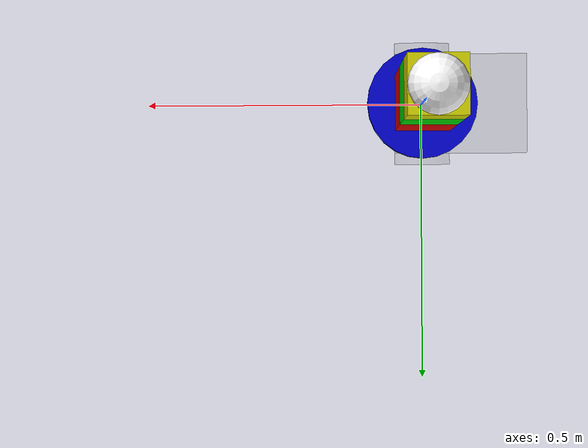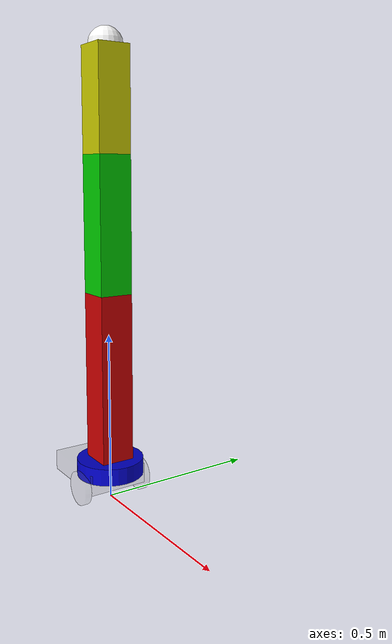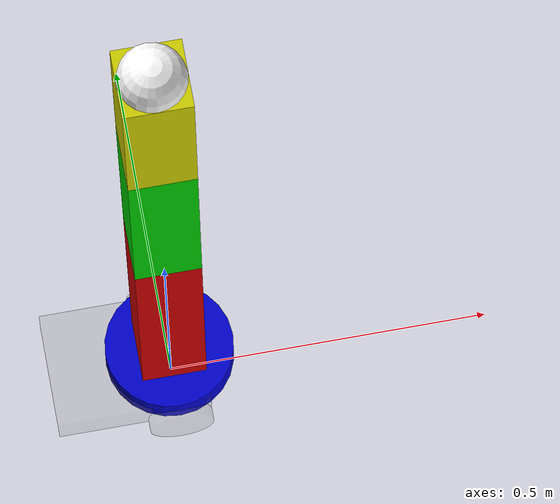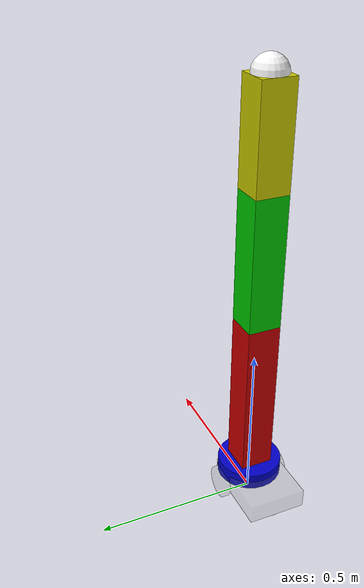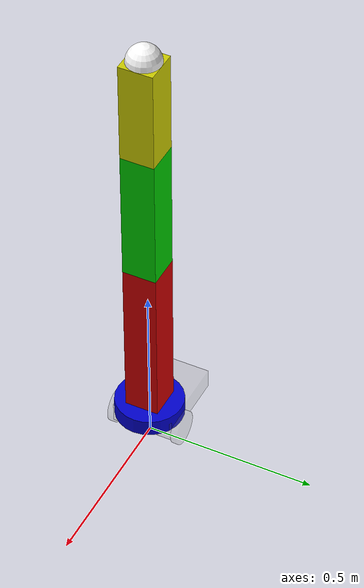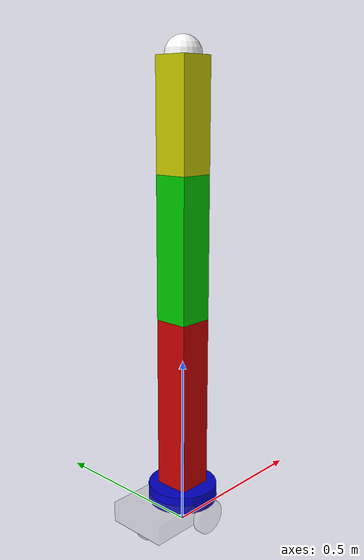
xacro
<?xml version="1.0"?>
<robot xmlns:xacro="http://ros.org/wiki/xacro" name="diffbot_with_rrr">

  <material name="gray">
    <color rgba="0.5 0.5 0.5 0.2"/>
    <isaac_rigid_body static_friction="0.8" dynamic_friction="0.5"/>
  </material>
  <material name="ball">
    <color rgba="0.5 0.5 0.5 0.2"/>
    <isaac_rigid_body static_friction="0.0" dynamic_friction="0.0"/>
  </material>
  <material name="white">
    <color rgba="1.0 1.0 1.0 1.0"/>
    <isaac_rigid_body static_friction="1.0" dynamic_friction="1.0"/>
  </material>

  <xacro:macro name="wheel_macro" params="parent prefix xyz">
    <joint name="${prefix}_joint" type="continuous">
      <origin xyz="${xyz}" rpy="${radians(-90)} 0 0"/>
      <parent link="${parent}"/>
      <child  link="${prefix}_link"/>
      <axis xyz="0 0 1" />
      <isaac_drive_api stiffness="0" damping="30000" joint_friction="10000"/>
    </joint>
    <transmission name="${prefix}_trans" type="SimpleTransmission">
      <type>transmission_interface/SimpleTransmission</type>
        <actuator name="${prefix}_motor">
          <mechanicalReduction>50</mechanicalReduction>
        </actuator>
      <joint name="${prefix}_joint">
        <hardwareInterface>hardware_interface/VelocityJointInterface</hardwareInterface>
      </joint>
    </transmission>
    <link name="${prefix}_link">
      <inertial>
        <origin xyz="0 0 0" rpy="0 0 0"/>
        <mass value="0.1"/>
        <inertia ixx="0.0001" ixy="0.0" ixz="0.0" iyy="0.0001" iyz="0.0" izz="0.0001"/>
      </inertial>
      <visual>
        <geometry>
          <cylinder radius="0.05" length="0.02" />
        </geometry>
        <material name="gray"/>
      </visual>
      <collision>
        <geometry>
          <cylinder radius="0.05" length="0.02" />
        </geometry>
      </collision>
    </link>
  </xacro:macro>

  <link name="base_link"/>

  <joint name="body_joint" type="fixed">
    <parent link="base_link"/>
    <child  link="body_link"/>
    <origin xyz="-0.07 0 0.07" rpy="0 0 0"/>
  </joint>
  <link name="body_link">
    <inertial>
      <origin xyz="0 0 0" rpy="0 0 0"/>
      <mass value="1.0"/>
      <inertia ixx="0.001" ixy="0.0" ixz="0.0" iyy="0.001" iyz="0.0" izz="0.001"/>
    </inertial>
    <visual>
      <origin xyz="0 0 0" rpy="0 0 0" />
      <geometry>
        <box size="0.24 0.18 0.06" />
      </geometry>
      <material name="gray" />
    </visual>
    <collision>
      <origin xyz="0 0 0" rpy="0 0 0" />
      <geometry>
        <box size="0.24 0.178 0.06" />
      </geometry>
    </collision>
  </link>

  <xacro:wheel_macro prefix="left_wheel"  parent="base_link" xyz="0 0.1 0.05"/>
  <xacro:wheel_macro prefix="right_wheel" parent="base_link" xyz="0 -0.1 0.05"/>

  <joint name="ball_joint" type="fixed">
    <parent link="base_link"/>
    <child  link="ball_link"/>
    <origin xyz="-0.14 0 0.04" rpy="0 0 0"/>
  </joint>
  <link name="ball_link">
    <visual>
      <origin xyz="0 0 0" rpy="0 0 0" />
      <geometry>
        <sphere radius="0.04" />
      </geometry>
      <material name="ball" />
    </visual>
    <collision>
      <origin xyz="0 0 0" rpy="0 0 0" />
      <geometry>
        <sphere radius="0.04" />
      </geometry>
    </collision>
  </link>

  <link name="rrr_base_link">
    <visual>
      <geometry>
        <cylinder length="0.05" radius="0.1" />
      </geometry>
      <material name="blue">
        <color rgba="0 0 0.8 1" />
      </material>
    </visual>
    <collision>
      <geometry>
        <cylinder length="0.05" radius="0.1" />
      </geometry>
    </collision>
  </link>
  <link name="link1">
    <visual>
      <geometry>
        <box size="0.1 0.1 0.5" />
      </geometry>
      <origin xyz="0 0 0.25" rpy="0 0 0" />
      <material name="red">
        <color rgba="0.8 0 0 1" />
      </material>
    </visual>
    <collision>
      <geometry>
        <box size="0.1 0.1 0.5" />
      </geometry>
      <origin xyz="0 0 0.25" rpy="0 0 0" />
    </collision>
  </link>
  <link name="link2">
    <visual>
      <geometry>
        <box size="0.1 0.1 0.4" />
      </geometry>
      <origin xyz="0 0 0.2" rpy="0 0 0" />
      <material name="green">
        <color rgba="0 0.8 0 1" />
      </material>
    </visual>
    <collision>
      <geometry>
        <box size="0.1 0.1 0.4" />
      </geometry>
      <origin xyz="0 0 0.2" rpy="0 0 0" />
    </collision>
  </link>
  <link name="link3">
    <visual>
      <geometry>
        <box size="0.1 0.1 0.3" />
      </geometry>
      <origin xyz="0 0 0.15" rpy="0 0 0" />
      <material name="yellow">
        <color rgba="0.8 0.8 0 1" />
      </material>
    </visual>
    <collision>
      <geometry>
        <box size="0.1 0.1 0.3" />
      </geometry>
      <origin xyz="0 0 0.15" rpy="0 0 0" />
    </collision>
  </link>
  <link name="end_effector">
    <visual>
      <geometry>
        <sphere radius="0.05" />
      </geometry>
      <material name="white">
        <color rgba="1 1 1 1" />
      </material>
    </visual>
    <collision>
      <geometry>
        <sphere radius="0.05" />
      </geometry>
    </collision>
  </link>
  <joint name="rrr_base_joint" type="prismatic">
    <parent link="base_link" />
    <child link="rrr_base_link" />
    <origin xyz="0 0 0.1" rpy="0 0 0" />
    <axis xyz="1 0 0" />
    <limit lower="-3.14159" upper="3.14159" effort="100" velocity="1" />
  </joint>
  <joint name="joint1" type="revolute">
    <parent link="rrr_base_link" />
    <child link="link1" />
    <origin xyz="0 0 0.025" rpy="0 0 0" />
    <axis xyz="0 0 1" />
    <limit lower="-3.14159" upper="3.14159" effort="100" velocity="1" />
  </joint>
  <joint name="joint2" type="revolute">
    <parent link="link1" />
    <child link="link2" />
    <origin xyz="0 0 0.5" rpy="0 0 0" />
    <axis xyz="0 1 0" />
    <limit lower="-3.14159" upper="3.14159" effort="100" velocity="1" />
  </joint>
  <joint name="joint3" type="revolute">
    <parent link="link2" />
    <child link="link3" />
    <origin xyz="0 0 0.4" rpy="0 0 0" />
    <axis xyz="0 1 0" />
    <limit lower="-3.14159" upper="3.14159" effort="100" velocity="1" />
  </joint>
  <joint name="end_effector_joint" type="revolute">
    <parent link="link3" />
    <child link="end_effector" />
    <origin xyz="0 0 0.3" rpy="0 0 0" />
    <axis xyz="0 0 1" />
    <limit lower="0" upper="0" effort="0" velocity="0" />
  </joint>
  <ros2_control name="name" type="system">
    <hardware>
      <plugin>topic_based_ros2_control/TopicBasedSystem</plugin>
      <param name="joint_commands_topic">/topic_based_joint_commands</param>
      <param name="joint_states_topic">/topic_based_joint_states</param>
    </hardware>
      <joint name="left_wheel_joint">
        <command_interface name="velocity">
          <param name="min">-1</param>
          <param name="max">1</param>
        </command_interface>
        <state_interface name="position"/>
        <state_interface name="velocity"/>
        <state_interface name="effort"/>
      </joint>
      <joint name="right_wheel_joint">
        <command_interface name="velocity">
          <param name="min">-1</param>
          <param name="max">1</param>
        </command_interface>
        <state_interface name="position"/>
        <state_interface name="velocity"/>
        <state_interface name="effort"/>
      </joint>
    <joint name="rrr_base_joint">
      <command_interface name="effort" />
      <state_interface name="position"/>
      <state_interface name="velocity" />
        <state_interface name="effort"/>
    </joint>
    <joint name="joint_1">
      <command_interface name="position" />
      <state_interface name="position">
        <param name="initial_value">0.2</param>
      </state_interface>
      <state_interface name="velocity" />
    </joint>
    <joint name="joint_2">
      <command_interface name="position" />
      <state_interface name="position">
        <param name="initial_value">0.3</param>
      </state_interface>
      <state_interface name="velocity" />
    </joint>
    <joint name="joint_3">
      <command_interface name="position" />
      <state_interface name="position">
        <param name="initial_value">0.1</param>
      </state_interface>
      <state_interface name="velocity" />
    </joint>
  </ros2_control>

</robot>
